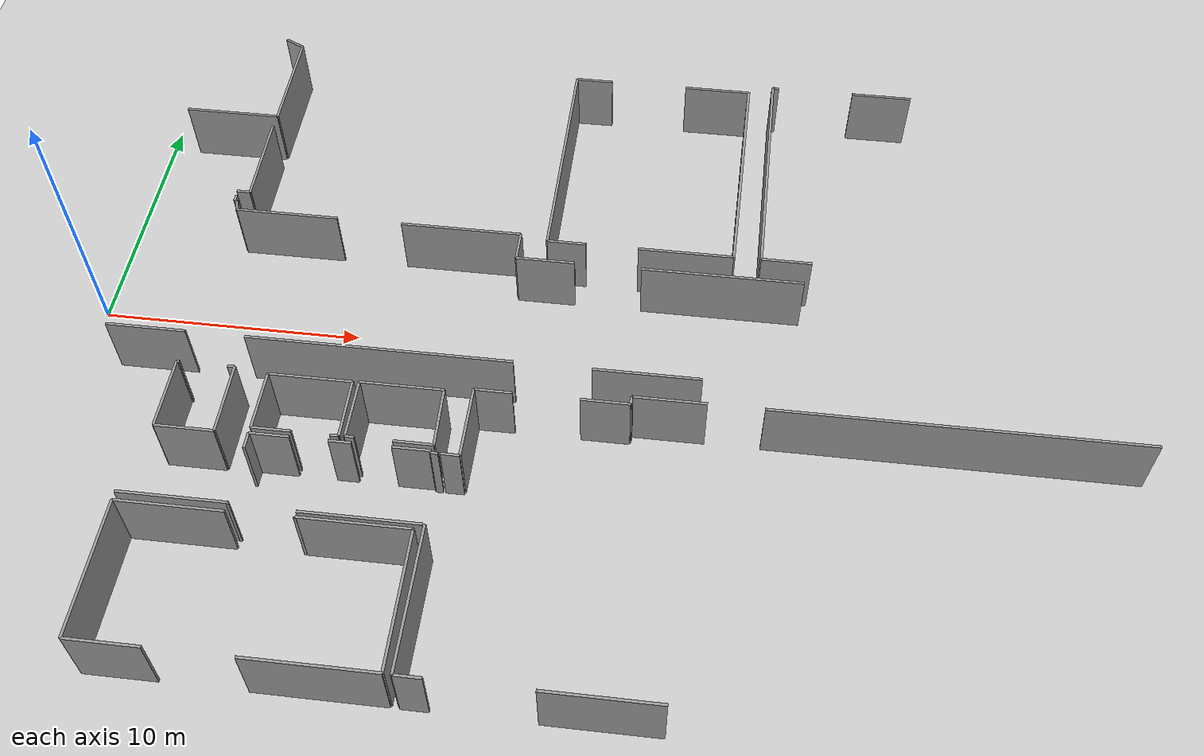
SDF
<sdf version="1.6">
 <world name="default">
  <model name="ground_plane">
   <static>1</static>
   <link name="link">
    <collision name="collision">
     <geometry><plane><normal>0 0 1</normal><size>100 100</size></plane></geometry>
     <surface><friction><ode><mu>100</mu><mu2>50</mu2></ode></friction></surface>
    </collision>
    <visual name="visual">
     <cast_shadows>0</cast_shadows>
     <geometry><plane><normal>0 0 1</normal><size>100 100</size></plane></geometry>
     <material>
      <script><uri>file://media/materials/scripts/gazebo.material</uri><name>Gazebo/Grey</name></script>
     </material>
    </visual>
   </link>
  </model>
  <model name="50056456">
   <static>1</static>
   <link name="Wall_29">
    <collision name="Wall_29_Collision">
     <geometry><box><size>4.00091484333 0.1 2.5</size></box></geometry>
     <pose>2.00045742167 0 1.25 0 0 0</pose>
    </collision>
    <visual name="Wall_29_Visual">
     <pose>2.00045742167 0 1.25 0 0 0</pose>
     <geometry><box><size>4.00091484333 0.1 2.5</size></box></geometry>
     <material>
      <script><uri>file://media/materials/scripts/gazebo.material</uri><name>Gazebo/Grey</name></script>
      <ambient>1 1 1 1</ambient>
     </material>
    </visual>
    <pose>78.9202307438 -17.0020245144 0 0 0 3.14159265359</pose>
   </link>
   <link name="Wall_30">
    <collision name="Wall_30_Collision">
     <geometry><box><size>9.94739650835 0.1 2.5</size></box></geometry>
     <pose>4.97369825417 0 1.25 0 0 0</pose>
    </collision>
    <visual name="Wall_30_Visual">
     <pose>4.97369825417 0 1.25 0 0 0</pose>
     <geometry><box><size>9.94739650835 0.1 2.5</size></box></geometry>
     <material>
      <script><uri>file://media/materials/scripts/gazebo.material</uri><name>Gazebo/Grey</name></script>
      <ambient>1 1 1 1</ambient>
     </material>
    </visual>
    <pose>72.0470466655 -17.0020245144 0 0 0 3.14159265359</pose>
   </link>
   <link name="Wall_31">
    <collision name="Wall_31_Collision">
     <geometry><box><size>3.02372663126 0.1 2.5</size></box></geometry>
     <pose>1.51186331563 0 1.25 0 0 0</pose>
    </collision>
    <visual name="Wall_31_Visual">
     <pose>1.51186331563 0 1.25 0 0 0</pose>
     <geometry><box><size>3.02372663126 0.1 2.5</size></box></geometry>
     <material>
      <script><uri>file://media/materials/scripts/gazebo.material</uri><name>Gazebo/Grey</name></script>
      <ambient>1 1 1 1</ambient>
     </material>
    </visual>
    <pose>59.875903196 -17.0020245144 0 0 0 3.14159265359</pose>
   </link>
   <link name="Wall_61">
    <collision name="Wall_61_Collision">
     <geometry><box><size>0.252767824621 0.1 2.5</size></box></geometry>
     <pose>0.126383912311 0 1.25 0 0 0</pose>
    </collision>
    <visual name="Wall_61_Visual">
     <pose>0.126383912311 0 1.25 0 0 0</pose>
     <geometry><box><size>0.252767824621 0.1 2.5</size></box></geometry>
     <material>
      <script><uri>file://media/materials/scripts/gazebo.material</uri><name>Gazebo/Grey</name></script>
      <ambient>1 1 1 1</ambient>
     </material>
    </visual>
    <pose>59.925711333 -10.1540833355 0 0 0 -1.57079632679</pose>
   </link>
   <link name="Wall_62">
    <collision name="Wall_62_Collision">
     <geometry><box><size>0.110430015733 0.1 2.5</size></box></geometry>
     <pose>0.0552150078667 0 1.25 0 0 0</pose>
    </collision>
    <visual name="Wall_62_Visual">
     <pose>0.0552150078667 0 1.25 0 0 0</pose>
     <geometry><box><size>0.110430015733 0.1 2.5</size></box></geometry>
     <material>
      <script><uri>file://media/materials/scripts/gazebo.material</uri><name>Gazebo/Grey</name></script>
      <ambient>1 1 1 1</ambient>
     </material>
    </visual>
    <pose>59.925711333 -10.4068511601 0 0 0 -0.265444729628</pose>
   </link>
   <link name="Wall_63">
    <collision name="Wall_63_Collision">
     <geometry><box><size>0.448701913072 0.1 2.5</size></box></geometry>
     <pose>0.224350956536 0 1.25 0 0 0</pose>
    </collision>
    <visual name="Wall_63_Visual">
     <pose>0.224350956536 0 1.25 0 0 0</pose>
     <geometry><box><size>0.448701913072 0.1 2.5</size></box></geometry>
     <material>
      <script><uri>file://media/materials/scripts/gazebo.material</uri><name>Gazebo/Grey</name></script>
      <ambient>1 1 1 1</ambient>
     </material>
    </visual>
    <pose>60.0322736398 -10.435821199 0 0 0 -1.33140368615</pose>
   </link>
   <link name="Wall_64">
    <collision name="Wall_64_Collision">
     <geometry><box><size>4.01548457049 0.1 2.5</size></box></geometry>
     <pose>2.00774228524 0 1.25 0 0 0</pose>
    </collision>
    <visual name="Wall_64_Visual">
     <pose>2.00774228524 0 1.25 0 0 0</pose>
     <geometry><box><size>4.01548457049 0.1 2.5</size></box></geometry>
     <material>
      <script><uri>file://media/materials/scripts/gazebo.material</uri><name>Gazebo/Grey</name></script>
      <ambient>1 1 1 1</ambient>
     </material>
    </visual>
    <pose>60.1386665311 -10.8717271056 0 0 0 0.0</pose>
   </link>
   <link name="Wall_65">
    <collision name="Wall_65_Collision">
     <geometry><box><size>4.70076999314 0.1 2.5</size></box></geometry>
     <pose>2.35038499657 0 1.25 0 0 0</pose>
    </collision>
    <visual name="Wall_65_Visual">
     <pose>2.35038499657 0 1.25 0 0 0</pose>
     <geometry><box><size>4.70076999314 0.1 2.5</size></box></geometry>
     <material>
      <script><uri>file://media/materials/scripts/gazebo.material</uri><name>Gazebo/Grey</name></script>
      <ambient>1 1 1 1</ambient>
     </material>
    </visual>
    <pose>66.7052086775 -10.8717271056 0 0 0 0.0</pose>
   </link>
   <link name="Wall_66">
    <collision name="Wall_66_Collision">
     <geometry><box><size>1.21132033917 0.1 2.5</size></box></geometry>
     <pose>0.605660169585 0 1.25 0 0 0</pose>
    </collision>
    <visual name="Wall_66_Visual">
     <pose>0.605660169585 0 1.25 0 0 0</pose>
     <geometry><box><size>1.21132033917 0.1 2.5</size></box></geometry>
     <material>
      <script><uri>file://media/materials/scripts/gazebo.material</uri><name>Gazebo/Grey</name></script>
      <ambient>1 1 1 1</ambient>
     </material>
    </visual>
    <pose>71.4059786706 -10.8717271056 0 0 0 -1.57079632679</pose>
   </link>
   <link name="Wall_67">
    <collision name="Wall_67_Collision">
     <geometry><box><size>2.25017576851 0.1 2.5</size></box></geometry>
     <pose>1.12508788426 0 1.25 0 0 0</pose>
    </collision>
    <visual name="Wall_67_Visual">
     <pose>1.12508788426 0 1.25 0 0 0</pose>
     <geometry><box><size>2.25017576851 0.1 2.5</size></box></geometry>
     <material>
      <script><uri>file://media/materials/scripts/gazebo.material</uri><name>Gazebo/Grey</name></script>
      <ambient>1 1 1 1</ambient>
     </material>
    </visual>
    <pose>71.4059786706 -12.0830474448 0 0 0 0.0</pose>
   </link>
   <link name="Wall_68">
    <collision name="Wall_68_Collision">
     <geometry><box><size>6.17451483656 0.1 2.5</size></box></geometry>
     <pose>3.08725741828 0 1.25 0 0 0</pose>
    </collision>
    <visual name="Wall_68_Visual">
     <pose>3.08725741828 0 1.25 0 0 0</pose>
     <geometry><box><size>6.17451483656 0.1 2.5</size></box></geometry>
     <material>
      <script><uri>file://media/materials/scripts/gazebo.material</uri><name>Gazebo/Grey</name></script>
      <ambient>1 1 1 1</ambient>
     </material>
    </visual>
    <pose>76.2209346649 -12.0830474448 0 0 0 0.0</pose>
   </link>
   <link name="Wall_148">
    <collision name="Wall_148_Collision">
     <geometry><box><size>0.85509022002 0.1 2.5</size></box></geometry>
     <pose>0.42754511001 0 1.25 0 0 0</pose>
    </collision>
    <visual name="Wall_148_Visual">
     <pose>0.42754511001 0 1.25 0 0 0</pose>
     <geometry><box><size>0.85509022002 0.1 2.5</size></box></geometry>
     <material>
      <script><uri>file://media/materials/scripts/gazebo.material</uri><name>Gazebo/Grey</name></script>
      <ambient>1 1 1 1</ambient>
     </material>
    </visual>
    <pose>59.6485476862 -0.87198122877 0 0 0 -0.45939457776</pose>
   </link>
   <link name="Wall_149">
    <collision name="Wall_149_Collision">
     <geometry><box><size>4.3221265025 0.1 2.5</size></box></geometry>
     <pose>2.16106325125 0 1.25 0 0 0</pose>
    </collision>
    <visual name="Wall_149_Visual">
     <pose>2.16106325125 0 1.25 0 0 0</pose>
     <geometry><box><size>4.3221265025 0.1 2.5</size></box></geometry>
     <material>
      <script><uri>file://media/materials/scripts/gazebo.material</uri><name>Gazebo/Grey</name></script>
      <ambient>1 1 1 1</ambient>
     </material>
    </visual>
    <pose>60.4149831008 -1.2511329657 0 0 0 -1.57079632679</pose>
   </link>
   <link name="Wall_150">
    <collision name="Wall_150_Collision">
     <geometry><box><size>3.79236444648 0.1 2.5</size></box></geometry>
     <pose>1.89618222324 0 1.25 0 0 0</pose>
    </collision>
    <visual name="Wall_150_Visual">
     <pose>1.89618222324 0 1.25 0 0 0</pose>
     <geometry><box><size>3.79236444648 0.1 2.5</size></box></geometry>
     <material>
      <script><uri>file://media/materials/scripts/gazebo.material</uri><name>Gazebo/Grey</name></script>
      <ambient>1 1 1 1</ambient>
     </material>
    </visual>
    <pose>60.4149831008 -5.5732594682 0 0 0 3.14159265359</pose>
   </link>
   <link name="Wall_152">
    <collision name="Wall_152_Collision">
     <geometry><box><size>0.522985438744 0.1 2.5</size></box></geometry>
     <pose>0.261492719372 0 1.25 0 0 0</pose>
    </collision>
    <visual name="Wall_152_Visual">
     <pose>0.261492719372 0 1.25 0 0 0</pose>
     <geometry><box><size>0.522985438744 0.1 2.5</size></box></geometry>
     <material>
      <script><uri>file://media/materials/scripts/gazebo.material</uri><name>Gazebo/Grey</name></script>
      <ambient>1 1 1 1</ambient>
     </material>
    </visual>
    <pose>60.4099006378 -9.90317908058 0 0 0 3.14159265359</pose>
   </link>
   <link name="Wall_156">
    <collision name="Wall_156_Collision">
     <geometry><box><size>3.74653058064 0.1 2.5</size></box></geometry>
     <pose>1.87326529032 0 1.25 0 0 0</pose>
    </collision>
    <visual name="Wall_156_Visual">
     <pose>1.87326529032 0 1.25 0 0 0</pose>
     <geometry><box><size>3.74653058064 0.1 2.5</size></box></geometry>
     <material>
      <script><uri>file://media/materials/scripts/gazebo.material</uri><name>Gazebo/Grey</name></script>
      <ambient>1 1 1 1</ambient>
     </material>
    </visual>
    <pose>60.3668691181 -6.15689563162 0 0 0 -1.55931037599</pose>
   </link>
   <link name="Wall_157">
    <collision name="Wall_157_Collision">
     <geometry><box><size>2.17952953335 0.1 2.5</size></box></geometry>
     <pose>1.08976476667 0 1.25 0 0 0</pose>
    </collision>
    <visual name="Wall_157_Visual">
     <pose>1.08976476667 0 1.25 0 0 0</pose>
     <geometry><box><size>2.17952953335 0.1 2.5</size></box></geometry>
     <material>
      <script><uri>file://media/materials/scripts/gazebo.material</uri><name>Gazebo/Grey</name></script>
      <ambient>1 1 1 1</ambient>
     </material>
    </visual>
    <pose>62.1438675849 -21.1877715941 0 0 0 3.14159265359</pose>
   </link>
   <link name="Wall_158">
    <collision name="Wall_158_Collision">
     <geometry><box><size>2.80365598502 0.1 2.5</size></box></geometry>
     <pose>1.40182799251 0 1.25 0 0 0</pose>
    </collision>
    <visual name="Wall_158_Visual">
     <pose>1.40182799251 0 1.25 0 0 0</pose>
     <geometry><box><size>2.80365598502 0.1 2.5</size></box></geometry>
     <material>
      <script><uri>file://media/materials/scripts/gazebo.material</uri><name>Gazebo/Grey</name></script>
      <ambient>1 1 1 1</ambient>
     </material>
    </visual>
    <pose>59.9643380516 -21.1877715941 0 0 0 1.57079632679</pose>
   </link>
   <link name="Wall_159">
    <collision name="Wall_159_Collision">
     <geometry><box><size>0.0987691968862 0.1 2.5</size></box></geometry>
     <pose>0.0493845984431 0 1.25 0 0 0</pose>
    </collision>
    <visual name="Wall_159_Visual">
     <pose>0.0493845984431 0 1.25 0 0 0</pose>
     <geometry><box><size>0.0987691968862 0.1 2.5</size></box></geometry>
     <material>
      <script><uri>file://media/materials/scripts/gazebo.material</uri><name>Gazebo/Grey</name></script>
      <ambient>1 1 1 1</ambient>
     </material>
    </visual>
    <pose>59.9643380516 -18.3841156091 0 0 0 0.0</pose>
   </link>
   <link name="Wall_160">
    <collision name="Wall_160_Collision">
     <geometry><box><size>0.267337551778 0.1 2.5</size></box></geometry>
     <pose>0.133668775889 0 1.25 0 0 0</pose>
    </collision>
    <visual name="Wall_160_Visual">
     <pose>0.133668775889 0 1.25 0 0 0</pose>
     <geometry><box><size>0.267337551778 0.1 2.5</size></box></geometry>
     <material>
      <script><uri>file://media/materials/scripts/gazebo.material</uri><name>Gazebo/Grey</name></script>
      <ambient>1 1 1 1</ambient>
     </material>
    </visual>
    <pose>61.8484070714 -18.3841156091 0 0 0 0.0</pose>
   </link>
   <link name="Wall_161">
    <collision name="Wall_161_Collision">
     <geometry><box><size>2.80379702963 0.1 2.5</size></box></geometry>
     <pose>1.40189851481 0 1.25 0 0 0</pose>
    </collision>
    <visual name="Wall_161_Visual">
     <pose>1.40189851481 0 1.25 0 0 0</pose>
     <geometry><box><size>2.80379702963 0.1 2.5</size></box></geometry>
     <material>
      <script><uri>file://media/materials/scripts/gazebo.material</uri><name>Gazebo/Grey</name></script>
      <ambient>1 1 1 1</ambient>
     </material>
    </visual>
    <pose>62.1157446232 -18.3841156091 0 0 0 -1.56076584563</pose>
   </link>
   <link name="Wall_162">
    <collision name="Wall_162_Collision">
     <geometry><box><size>3.67157124342 0.1 2.5</size></box></geometry>
     <pose>1.83578562171 0 1.25 0 0 0</pose>
    </collision>
    <visual name="Wall_162_Visual">
     <pose>1.83578562171 0 1.25 0 0 0</pose>
     <geometry><box><size>3.67157124342 0.1 2.5</size></box></geometry>
     <material>
      <script><uri>file://media/materials/scripts/gazebo.material</uri><name>Gazebo/Grey</name></script>
      <ambient>1 1 1 1</ambient>
     </material>
    </visual>
    <pose>79.6668445529 -11.0867152889 0 0 0 3.14159265359</pose>
   </link>
   <link name="Wall_163">
    <collision name="Wall_163_Collision">
     <geometry><box><size>1.49881832736 0.1 2.5</size></box></geometry>
     <pose>0.749409163681 0 1.25 0 0 0</pose>
    </collision>
    <visual name="Wall_163_Visual">
     <pose>0.749409163681 0 1.25 0 0 0</pose>
     <geometry><box><size>1.49881832736 0.1 2.5</size></box></geometry>
     <material>
      <script><uri>file://media/materials/scripts/gazebo.material</uri><name>Gazebo/Grey</name></script>
      <ambient>1 1 1 1</ambient>
     </material>
    </visual>
    <pose>73.9663540952 -11.0867152889 0 0 0 3.14159265359</pose>
   </link>
   <link name="Wall_164">
    <collision name="Wall_164_Collision">
     <geometry><box><size>9.18451881782 0.1 2.5</size></box></geometry>
     <pose>4.59225940891 0 1.25 0 0 0</pose>
    </collision>
    <visual name="Wall_164_Visual">
     <pose>4.59225940891 0 1.25 0 0 0</pose>
     <geometry><box><size>9.18451881782 0.1 2.5</size></box></geometry>
     <material>
      <script><uri>file://media/materials/scripts/gazebo.material</uri><name>Gazebo/Grey</name></script>
      <ambient>1 1 1 1</ambient>
     </material>
    </visual>
    <pose>72.4675357678 -11.0867152889 0 0 0 1.57079632679</pose>
   </link>
   <link name="Wall_165">
    <collision name="Wall_165_Collision">
     <geometry><box><size>1.4937358644 0.1 2.5</size></box></geometry>
     <pose>0.7468679322 0 1.25 0 0 0</pose>
    </collision>
    <visual name="Wall_165_Visual">
     <pose>0.7468679322 0 1.25 0 0 0</pose>
     <geometry><box><size>1.4937358644 0.1 2.5</size></box></geometry>
     <material>
      <script><uri>file://media/materials/scripts/gazebo.material</uri><name>Gazebo/Grey</name></script>
      <ambient>1 1 1 1</ambient>
     </material>
    </visual>
    <pose>72.4675357678 -1.90219647108 0 0 0 0.0</pose>
   </link>
   <link name="Wall_166">
    <collision name="Wall_166_Collision">
     <geometry><box><size>2.65406215852 0.1 2.5</size></box></geometry>
     <pose>1.32703107926 0 1.25 0 0 0</pose>
    </collision>
    <visual name="Wall_166_Visual">
     <pose>1.32703107926 0 1.25 0 0 0</pose>
     <geometry><box><size>2.65406215852 0.1 2.5</size></box></geometry>
     <material>
      <script><uri>file://media/materials/scripts/gazebo.material</uri><name>Gazebo/Grey</name></script>
      <ambient>1 1 1 1</ambient>
     </material>
    </visual>
    <pose>77.0705530567 -1.90219647108 0 0 0 0.0</pose>
   </link>
   <link name="Wall_167">
    <collision name="Wall_167_Collision">
     <geometry><box><size>9.18470050488 0.1 2.5</size></box></geometry>
     <pose>4.59235025244 0 1.25 0 0 0</pose>
    </collision>
    <visual name="Wall_167_Visual">
     <pose>4.59235025244 0 1.25 0 0 0</pose>
     <geometry><box><size>9.18470050488 0.1 2.5</size></box></geometry>
     <material>
      <script><uri>file://media/materials/scripts/gazebo.material</uri><name>Gazebo/Grey</name></script>
      <ambient>1 1 1 1</ambient>
     </material>
    </visual>
    <pose>79.7246152152 -1.90219647108 0 0 0 -1.57708624809</pose>
   </link>
   <link name="Wall_169">
    <collision name="Wall_169_Collision">
     <geometry><box><size>1.93421598773 0.1 2.5</size></box></geometry>
     <pose>0.967107993867 0 1.25 0 0 0</pose>
    </collision>
    <visual name="Wall_169_Visual">
     <pose>0.967107993867 0 1.25 0 0 0</pose>
     <geometry><box><size>1.93421598773 0.1 2.5</size></box></geometry>
     <material>
      <script><uri>file://media/materials/scripts/gazebo.material</uri><name>Gazebo/Grey</name></script>
      <ambient>1 1 1 1</ambient>
     </material>
    </visual>
    <pose>82.6516056348 -11.0680795914 0 0 0 3.14159265359</pose>
   </link>
   <link name="Wall_170">
    <collision name="Wall_170_Collision">
     <geometry><box><size>9.57281898808 0.1 2.5</size></box></geometry>
     <pose>4.78640949404 0 1.25 0 0 0</pose>
    </collision>
    <visual name="Wall_170_Visual">
     <pose>4.78640949404 0 1.25 0 0 0</pose>
     <geometry><box><size>9.57281898808 0.1 2.5</size></box></geometry>
     <material>
      <script><uri>file://media/materials/scripts/gazebo.material</uri><name>Gazebo/Grey</name></script>
      <ambient>1 1 1 1</ambient>
     </material>
    </visual>
    <pose>80.717389647 -11.0680795914 0 0 0 1.57079632679</pose>
   </link>
   <link name="Wall_171">
    <collision name="Wall_171_Collision">
     <geometry><box><size>0.258019703015 0.1 2.5</size></box></geometry>
     <pose>0.129009851507 0 1.25 0 0 0</pose>
    </collision>
    <visual name="Wall_171_Visual">
     <pose>0.129009851507 0 1.25 0 0 0</pose>
     <geometry><box><size>0.258019703015 0.1 2.5</size></box></geometry>
     <material>
      <script><uri>file://media/materials/scripts/gazebo.material</uri><name>Gazebo/Grey</name></script>
      <ambient>1 1 1 1</ambient>
     </material>
    </visual>
    <pose>80.717389647 -1.49526060329 0 0 0 0.0</pose>
   </link>
   <link name="Wall_172">
    <collision name="Wall_172_Collision">
     <geometry><box><size>2.41738879995 0.1 2.5</size></box></geometry>
     <pose>1.20869439997 0 1.25 0 0 0</pose>
    </collision>
    <visual name="Wall_172_Visual">
     <pose>1.20869439997 0 1.25 0 0 0</pose>
     <geometry><box><size>2.41738879995 0.1 2.5</size></box></geometry>
     <material>
      <script><uri>file://media/materials/scripts/gazebo.material</uri><name>Gazebo/Grey</name></script>
      <ambient>1 1 1 1</ambient>
     </material>
    </visual>
    <pose>84.0497911955 -1.49526060329 0 0 0 0.0</pose>
   </link>
   <link name="Wall_214">
    <collision name="Wall_214_Collision">
     <geometry><box><size>4.08765554454 0.1 2.5</size></box></geometry>
     <pose>2.04382777227 0 1.25 0 0 0</pose>
    </collision>
    <visual name="Wall_214_Visual">
     <pose>2.04382777227 0 1.25 0 0 0</pose>
     <geometry><box><size>4.08765554454 0.1 2.5</size></box></geometry>
     <material>
      <script><uri>file://media/materials/scripts/gazebo.material</uri><name>Gazebo/Grey</name></script>
      <ambient>1 1 1 1</ambient>
     </material>
    </visual>
    <pose>78.785037229 -29.4665955122 0 0 0 3.14159265359</pose>
   </link>
   <link name="Wall_215">
    <collision name="Wall_215_Collision">
     <geometry><box><size>0.971766918249 0.1 2.5</size></box></geometry>
     <pose>0.485883459124 0 1.25 0 0 0</pose>
    </collision>
    <visual name="Wall_215_Visual">
     <pose>0.485883459124 0 1.25 0 0 0</pose>
     <geometry><box><size>0.971766918249 0.1 2.5</size></box></geometry>
     <material>
      <script><uri>file://media/materials/scripts/gazebo.material</uri><name>Gazebo/Grey</name></script>
      <ambient>1 1 1 1</ambient>
     </material>
    </visual>
    <pose>71.1327115787 -29.4665955122 0 0 0 3.14159265359</pose>
   </link>
   <link name="Wall_216">
    <collision name="Wall_216_Collision">
     <geometry><box><size>5.42129382565 0.1 2.5</size></box></geometry>
     <pose>2.71064691283 0 1.25 0 0 0</pose>
    </collision>
    <visual name="Wall_216_Visual">
     <pose>2.71064691283 0 1.25 0 0 0</pose>
     <geometry><box><size>5.42129382565 0.1 2.5</size></box></geometry>
     <material>
      <script><uri>file://media/materials/scripts/gazebo.material</uri><name>Gazebo/Grey</name></script>
      <ambient>1 1 1 1</ambient>
     </material>
    </visual>
    <pose>70.1609446604 -29.4665955122 0 0 0 1.57079632679</pose>
   </link>
   <link name="Wall_217">
    <collision name="Wall_217_Collision">
     <geometry><box><size>0.679694713391 0.1 2.5</size></box></geometry>
     <pose>0.339847356696 0 1.25 0 0 0</pose>
    </collision>
    <visual name="Wall_217_Visual">
     <pose>0.339847356696 0 1.25 0 0 0</pose>
     <geometry><box><size>0.679694713391 0.1 2.5</size></box></geometry>
     <material>
      <script><uri>file://media/materials/scripts/gazebo.material</uri><name>Gazebo/Grey</name></script>
      <ambient>1 1 1 1</ambient>
     </material>
    </visual>
    <pose>70.1609446604 -21.2094567694 0 0 0 0.0</pose>
   </link>
   <link name="Wall_218">
    <collision name="Wall_218_Collision">
     <geometry><box><size>2.83448959366 0.1 2.5</size></box></geometry>
     <pose>1.41724479683 0 1.25 0 0 0</pose>
    </collision>
    <visual name="Wall_218_Visual">
     <pose>1.41724479683 0 1.25 0 0 0</pose>
     <geometry><box><size>2.83448959366 0.1 2.5</size></box></geometry>
     <material>
      <script><uri>file://media/materials/scripts/gazebo.material</uri><name>Gazebo/Grey</name></script>
      <ambient>1 1 1 1</ambient>
     </material>
    </visual>
    <pose>70.8406393738 -21.2094567694 0 0 0 1.57079632679</pose>
   </link>
   <link name="Wall_219">
    <collision name="Wall_219_Collision">
     <geometry><box><size>1.3917477743 0.1 2.5</size></box></geometry>
     <pose>0.695873887152 0 1.25 0 0 0</pose>
    </collision>
    <visual name="Wall_219_Visual">
     <pose>0.695873887152 0 1.25 0 0 0</pose>
     <geometry><box><size>1.3917477743 0.1 2.5</size></box></geometry>
     <material>
      <script><uri>file://media/materials/scripts/gazebo.material</uri><name>Gazebo/Grey</name></script>
      <ambient>1 1 1 1</ambient>
     </material>
    </visual>
    <pose>70.8406393738 -18.3749671758 0 0 0 0.0</pose>
   </link>
   <link name="Wall_220">
    <collision name="Wall_220_Collision">
     <geometry><box><size>1.81003447604 0.1 2.5</size></box></geometry>
     <pose>0.90501723802 0 1.25 0 0 0</pose>
    </collision>
    <visual name="Wall_220_Visual">
     <pose>0.90501723802 0 1.25 0 0 0</pose>
     <geometry><box><size>1.81003447604 0.1 2.5</size></box></geometry>
     <material>
      <script><uri>file://media/materials/scripts/gazebo.material</uri><name>Gazebo/Grey</name></script>
      <ambient>1 1 1 1</ambient>
     </material>
    </visual>
    <pose>74.6582467197 -18.3749671758 0 0 0 0.0</pose>
   </link>
   <link name="Wall_221">
    <collision name="Wall_221_Collision">
     <geometry><box><size>0.329174184476 0.1 2.5</size></box></geometry>
     <pose>0.164587092238 0 1.25 0 0 0</pose>
    </collision>
    <visual name="Wall_221_Visual">
     <pose>0.164587092238 0 1.25 0 0 0</pose>
     <geometry><box><size>0.329174184476 0.1 2.5</size></box></geometry>
     <material>
      <script><uri>file://media/materials/scripts/gazebo.material</uri><name>Gazebo/Grey</name></script>
      <ambient>1 1 1 1</ambient>
     </material>
    </visual>
    <pose>76.4682811957 -18.3749671758 0 0 0 1.57079632679</pose>
   </link>
   <link name="Wall_222">
    <collision name="Wall_222_Collision">
     <geometry><box><size>2.70420912641 0.1 2.5</size></box></geometry>
     <pose>1.3521045632 0 1.25 0 0 0</pose>
    </collision>
    <visual name="Wall_222_Visual">
     <pose>1.3521045632 0 1.25 0 0 0</pose>
     <geometry><box><size>2.70420912641 0.1 2.5</size></box></geometry>
     <material>
      <script><uri>file://media/materials/scripts/gazebo.material</uri><name>Gazebo/Grey</name></script>
      <ambient>1 1 1 1</ambient>
     </material>
    </visual>
    <pose>76.4682811957 -18.0457929913 0 0 0 0.0</pose>
   </link>
   <link name="Wall_223">
    <collision name="Wall_223_Collision">
     <geometry><box><size>13.7087579308 0.1 2.5</size></box></geometry>
     <pose>6.85437896538 0 1.25 0 0 0</pose>
    </collision>
    <visual name="Wall_223_Visual">
     <pose>6.85437896538 0 1.25 0 0 0</pose>
     <geometry><box><size>13.7087579308 0.1 2.5</size></box></geometry>
     <material>
      <script><uri>file://media/materials/scripts/gazebo.material</uri><name>Gazebo/Grey</name></script>
      <ambient>1 1 1 1</ambient>
     </material>
    </visual>
    <pose>81.2169957561 -18.0457929913 0 0 0 0.0</pose>
   </link>
   <link name="Wall_231">
    <collision name="Wall_231_Collision">
     <geometry><box><size>4.30128840436 0.1 2.5</size></box></geometry>
     <pose>2.15064420218 0 1.25 0 0 0</pose>
    </collision>
    <visual name="Wall_231_Visual">
     <pose>2.15064420218 0 1.25 0 0 0</pose>
     <geometry><box><size>4.30128840436 0.1 2.5</size></box></geometry>
     <material>
      <script><uri>file://media/materials/scripts/gazebo.material</uri><name>Gazebo/Grey</name></script>
      <ambient>1 1 1 1</ambient>
     </material>
    </visual>
    <pose>70.0826747308 -24.0458099328 0 0 0 3.14159265359</pose>
   </link>
   <link name="Wall_232">
    <collision name="Wall_232_Collision">
     <geometry><box><size>0.0696297425733 0.1 2.5</size></box></geometry>
     <pose>0.0348148712866 0 1.25 0 0 0</pose>
    </collision>
    <visual name="Wall_232_Visual">
     <pose>0.0348148712866 0 1.25 0 0 0</pose>
     <geometry><box><size>0.0696297425733 0.1 2.5</size></box></geometry>
     <material>
      <script><uri>file://media/materials/scripts/gazebo.material</uri><name>Gazebo/Grey</name></script>
      <ambient>1 1 1 1</ambient>
     </material>
    </visual>
    <pose>63.4136362481 -24.0458099328 0 0 0 1.57079632679</pose>
   </link>
   <link name="Wall_233">
    <collision name="Wall_233_Collision">
     <geometry><box><size>3.94382184273 0.1 2.5</size></box></geometry>
     <pose>1.97191092137 0 1.25 0 0 0</pose>
    </collision>
    <visual name="Wall_233_Visual">
     <pose>1.97191092137 0 1.25 0 0 0</pose>
     <geometry><box><size>3.94382184273 0.1 2.5</size></box></geometry>
     <material>
      <script><uri>file://media/materials/scripts/gazebo.material</uri><name>Gazebo/Grey</name></script>
      <ambient>1 1 1 1</ambient>
     </material>
    </visual>
    <pose>63.4136362481 -23.9761801903 0 0 0 3.14159265359</pose>
   </link>
   <link name="Wall_236">
    <collision name="Wall_236_Collision">
     <geometry><box><size>0.638187932539 0.1 2.5</size></box></geometry>
     <pose>0.319093966269 0 1.25 0 0 0</pose>
    </collision>
    <visual name="Wall_236_Visual">
     <pose>0.319093966269 0 1.25 0 0 0</pose>
     <geometry><box><size>0.638187932539 0.1 2.5</size></box></geometry>
     <material>
      <script><uri>file://media/materials/scripts/gazebo.material</uri><name>Gazebo/Grey</name></script>
      <ambient>1 1 1 1</ambient>
     </material>
    </visual>
    <pose>63.3643363574 -21.7678500335 0 0 0 1.57079632679</pose>
   </link>
   <link name="Wall_237">
    <collision name="Wall_237_Collision">
     <geometry><box><size>1.44325006565 0.1 2.5</size></box></geometry>
     <pose>0.721625032824 0 1.25 0 0 0</pose>
    </collision>
    <visual name="Wall_237_Visual">
     <pose>0.721625032824 0 1.25 0 0 0</pose>
     <geometry><box><size>1.44325006565 0.1 2.5</size></box></geometry>
     <material>
      <script><uri>file://media/materials/scripts/gazebo.material</uri><name>Gazebo/Grey</name></script>
      <ambient>1 1 1 1</ambient>
     </material>
    </visual>
    <pose>63.3643363574 -21.1296621009 0 0 0 0.0</pose>
   </link>
   <link name="Wall_238">
    <collision name="Wall_238_Collision">
     <geometry><box><size>0.813194073848 0.1 2.5</size></box></geometry>
     <pose>0.406597036924 0 1.25 0 0 0</pose>
    </collision>
    <visual name="Wall_238_Visual">
     <pose>0.406597036924 0 1.25 0 0 0</pose>
     <geometry><box><size>0.813194073848 0.1 2.5</size></box></geometry>
     <material>
      <script><uri>file://media/materials/scripts/gazebo.material</uri><name>Gazebo/Grey</name></script>
      <ambient>1 1 1 1</ambient>
     </material>
    </visual>
    <pose>66.1927269955 -21.1296621009 0 0 0 0.0</pose>
   </link>
   <link name="Wall_239">
    <collision name="Wall_239_Collision">
     <geometry><box><size>1.38988420455 0.1 2.5</size></box></geometry>
     <pose>0.694942102276 0 1.25 0 0 0</pose>
    </collision>
    <visual name="Wall_239_Visual">
     <pose>0.694942102276 0 1.25 0 0 0</pose>
     <geometry><box><size>1.38988420455 0.1 2.5</size></box></geometry>
     <material>
      <script><uri>file://media/materials/scripts/gazebo.material</uri><name>Gazebo/Grey</name></script>
      <ambient>1 1 1 1</ambient>
     </material>
    </visual>
    <pose>68.4335849152 -21.1296621009 0 0 0 0.0</pose>
   </link>
   <link name="Wall_240">
    <collision name="Wall_240_Collision">
     <geometry><box><size>0.0869101166425 0.1 2.5</size></box></geometry>
     <pose>0.0434550583213 0 1.25 0 0 0</pose>
    </collision>
    <visual name="Wall_240_Visual">
     <pose>0.0434550583213 0 1.25 0 0 0</pose>
     <geometry><box><size>0.0869101166425 0.1 2.5</size></box></geometry>
     <material>
      <script><uri>file://media/materials/scripts/gazebo.material</uri><name>Gazebo/Grey</name></script>
      <ambient>1 1 1 1</ambient>
     </material>
    </visual>
    <pose>69.8234691198 -21.1296621009 0 0 0 -1.57079632679</pose>
   </link>
   <link name="Wall_241">
    <collision name="Wall_241_Collision">
     <geometry><box><size>0.261069180792 0.1 2.5</size></box></geometry>
     <pose>0.130534590396 0 1.25 0 0 0</pose>
    </collision>
    <visual name="Wall_241_Visual">
     <pose>0.130534590396 0 1.25 0 0 0</pose>
     <geometry><box><size>0.261069180792 0.1 2.5</size></box></geometry>
     <material>
      <script><uri>file://media/materials/scripts/gazebo.material</uri><name>Gazebo/Grey</name></script>
      <ambient>1 1 1 1</ambient>
     </material>
    </visual>
    <pose>69.8234691198 -21.2165722176 0 0 0 0.0</pose>
   </link>
   <link name="Wall_248">
    <collision name="Wall_248_Collision">
     <geometry><box><size>4.69162155981 0.1 2.5</size></box></geometry>
     <pose>2.3458107799 0 1.25 0 0 0</pose>
    </collision>
    <visual name="Wall_248_Visual">
     <pose>2.3458107799 0 1.25 0 0 0</pose>
     <geometry><box><size>4.69162155981 0.1 2.5</size></box></geometry>
     <material>
      <script><uri>file://media/materials/scripts/gazebo.material</uri><name>Gazebo/Grey</name></script>
      <ambient>1 1 1 1</ambient>
     </material>
    </visual>
    <pose>69.8571827908 -29.4510092924 0 0 0 3.14159265359</pose>
   </link>
   <link name="Wall_249">
    <collision name="Wall_249_Collision">
     <geometry><box><size>2.62797218199 0.1 2.5</size></box></geometry>
     <pose>1.31398609099 0 1.25 0 0 0</pose>
    </collision>
    <visual name="Wall_249_Visual">
     <pose>1.31398609099 0 1.25 0 0 0</pose>
     <geometry><box><size>2.62797218199 0.1 2.5</size></box></geometry>
     <material>
      <script><uri>file://media/materials/scripts/gazebo.material</uri><name>Gazebo/Grey</name></script>
      <ambient>1 1 1 1</ambient>
     </material>
    </visual>
    <pose>62.1248930565 -29.4510092924 0 0 0 3.14159265359</pose>
   </link>
   <link name="Wall_250">
    <collision name="Wall_250_Collision">
     <geometry><box><size>5.13701473067 0.1 2.5</size></box></geometry>
     <pose>2.56850736534 0 1.25 0 0 0</pose>
    </collision>
    <visual name="Wall_250_Visual">
     <pose>2.56850736534 0 1.25 0 0 0</pose>
     <geometry><box><size>5.13701473067 0.1 2.5</size></box></geometry>
     <material>
      <script><uri>file://media/materials/scripts/gazebo.material</uri><name>Gazebo/Grey</name></script>
      <ambient>1 1 1 1</ambient>
     </material>
    </visual>
    <pose>59.4969208745 -29.4510092924 0 0 0 1.57079632679</pose>
   </link>
   <link name="Wall_251">
    <collision name="Wall_251_Collision">
     <geometry><box><size>3.88876182731 0.1 2.5</size></box></geometry>
     <pose>1.94438091366 0 1.25 0 0 0</pose>
    </collision>
    <visual name="Wall_251_Visual">
     <pose>1.94438091366 0 1.25 0 0 0</pose>
     <geometry><box><size>3.88876182731 0.1 2.5</size></box></geometry>
     <material>
      <script><uri>file://media/materials/scripts/gazebo.material</uri><name>Gazebo/Grey</name></script>
      <ambient>1 1 1 1</ambient>
     </material>
    </visual>
    <pose>59.4969208745 -24.3139945618 0 0 0 0.0</pose>
   </link>
   <link name="Wall_252">
    <collision name="Wall_252_Collision">
     <geometry><box><size>0.055737677145 0.1 2.5</size></box></geometry>
     <pose>0.0278688385725 0 1.25 0 0 0</pose>
    </collision>
    <visual name="Wall_252_Visual">
     <pose>0.0278688385725 0 1.25 0 0 0</pose>
     <geometry><box><size>0.055737677145 0.1 2.5</size></box></geometry>
     <material>
      <script><uri>file://media/materials/scripts/gazebo.material</uri><name>Gazebo/Grey</name></script>
      <ambient>1 1 1 1</ambient>
     </material>
    </visual>
    <pose>65.7917206678 -24.3139945618 0 0 0 1.57079632679</pose>
   </link>
   <link name="Wall_253">
    <collision name="Wall_253_Collision">
     <geometry><box><size>4.02124469518 0.1 2.5</size></box></geometry>
     <pose>2.01062234759 0 1.25 0 0 0</pose>
    </collision>
    <visual name="Wall_253_Visual">
     <pose>2.01062234759 0 1.25 0 0 0</pose>
     <geometry><box><size>4.02124469518 0.1 2.5</size></box></geometry>
     <material>
      <script><uri>file://media/materials/scripts/gazebo.material</uri><name>Gazebo/Grey</name></script>
      <ambient>1 1 1 1</ambient>
     </material>
    </visual>
    <pose>65.7917206678 -24.2582568846 0 0 0 0.0</pose>
   </link>
   <link name="Wall_254">
    <collision name="Wall_254_Collision">
     <geometry><box><size>5.19294066496 0.1 2.5</size></box></geometry>
     <pose>2.59647033248 0 1.25 0 0 0</pose>
    </collision>
    <visual name="Wall_254_Visual">
     <pose>2.59647033248 0 1.25 0 0 0</pose>
     <geometry><box><size>5.19294066496 0.1 2.5</size></box></geometry>
     <material>
      <script><uri>file://media/materials/scripts/gazebo.material</uri><name>Gazebo/Grey</name></script>
      <ambient>1 1 1 1</ambient>
     </material>
    </visual>
    <pose>69.812965363 -24.2582568846 0 0 0 -1.56228131286</pose>
   </link>
   <link name="Wall_255">
    <collision name="Wall_255_Collision">
     <geometry><box><size>0.311724394975 0.1 2.5</size></box></geometry>
     <pose>0.155862197488 0 1.25 0 0 0</pose>
    </collision>
    <visual name="Wall_255_Visual">
     <pose>0.155862197488 0 1.25 0 0 0</pose>
     <geometry><box><size>0.311724394975 0.1 2.5</size></box></geometry>
     <material>
      <script><uri>file://media/materials/scripts/gazebo.material</uri><name>Gazebo/Grey</name></script>
      <ambient>1 1 1 1</ambient>
     </material>
    </visual>
    <pose>66.5132609929 -20.8933275732 0 0 0 3.14159265359</pose>
   </link>
   <link name="Wall_256">
    <collision name="Wall_256_Collision">
     <geometry><box><size>1.4403700033 0.1 2.5</size></box></geometry>
     <pose>0.720185001652 0 1.25 0 0 0</pose>
    </collision>
    <visual name="Wall_256_Visual">
     <pose>0.720185001652 0 1.25 0 0 0</pose>
     <geometry><box><size>1.4403700033 0.1 2.5</size></box></geometry>
     <material>
      <script><uri>file://media/materials/scripts/gazebo.material</uri><name>Gazebo/Grey</name></script>
      <ambient>1 1 1 1</ambient>
     </material>
    </visual>
    <pose>64.8202925805 -20.8933275732 0 0 0 3.14159265359</pose>
   </link>
   <link name="Wall_257">
    <collision name="Wall_257_Collision">
     <geometry><box><size>2.34149068639 0.1 2.5</size></box></geometry>
     <pose>1.17074534319 0 1.25 0 0 0</pose>
    </collision>
    <visual name="Wall_257_Visual">
     <pose>1.17074534319 0 1.25 0 0 0</pose>
     <geometry><box><size>2.34149068639 0.1 2.5</size></box></geometry>
     <material>
      <script><uri>file://media/materials/scripts/gazebo.material</uri><name>Gazebo/Grey</name></script>
      <ambient>1 1 1 1</ambient>
     </material>
    </visual>
    <pose>63.3799225771 -20.8933275732 0 0 0 1.57079632679</pose>
   </link>
   <link name="Wall_258">
    <collision name="Wall_258_Collision">
     <geometry><box><size>3.09962474482 0.1 2.5</size></box></geometry>
     <pose>1.54981237241 0 1.25 0 0 0</pose>
    </collision>
    <visual name="Wall_258_Visual">
     <pose>1.54981237241 0 1.25 0 0 0</pose>
     <geometry><box><size>3.09962474482 0.1 2.5</size></box></geometry>
     <material>
      <script><uri>file://media/materials/scripts/gazebo.material</uri><name>Gazebo/Grey</name></script>
      <ambient>1 1 1 1</ambient>
     </material>
    </visual>
    <pose>63.3799225771 -18.5518368868 0 0 0 0.0</pose>
   </link>
   <link name="Wall_259">
    <collision name="Wall_259_Collision">
     <geometry><box><size>2.34173338492 0.1 2.5</size></box></geometry>
     <pose>1.17086669246 0 1.25 0 0 0</pose>
    </collision>
    <visual name="Wall_259_Visual">
     <pose>1.17086669246 0 1.25 0 0 0</pose>
     <geometry><box><size>2.34173338492 0.1 2.5</size></box></geometry>
     <material>
      <script><uri>file://media/materials/scripts/gazebo.material</uri><name>Gazebo/Grey</name></script>
      <ambient>1 1 1 1</ambient>
     </material>
    </visual>
    <pose>66.479547322 -18.5518368868 0 0 0 -1.55639894239</pose>
   </link>
   <link name="Wall_260">
    <collision name="Wall_260_Collision">
     <geometry><box><size>1.44867135947 0.1 2.5</size></box></geometry>
     <pose>0.724335679737 0 1.25 0 0 0</pose>
    </collision>
    <visual name="Wall_260_Visual">
     <pose>0.724335679737 0 1.25 0 0 0</pose>
     <geometry><box><size>1.44867135947 0.1 2.5</size></box></geometry>
     <material>
      <script><uri>file://media/materials/scripts/gazebo.material</uri><name>Gazebo/Grey</name></script>
      <ambient>1 1 1 1</ambient>
     </material>
    </visual>
    <pose>69.8739549186 -20.885026217 0 0 0 3.14159265359</pose>
   </link>
   <link name="Wall_261">
    <collision name="Wall_261_Collision">
     <geometry><box><size>0.329682430773 0.1 2.5</size></box></geometry>
     <pose>0.164841215386 0 1.25 0 0 0</pose>
    </collision>
    <visual name="Wall_261_Visual">
     <pose>0.164841215386 0 1.25 0 0 0</pose>
     <geometry><box><size>0.329682430773 0.1 2.5</size></box></geometry>
     <material>
      <script><uri>file://media/materials/scripts/gazebo.material</uri><name>Gazebo/Grey</name></script>
      <ambient>1 1 1 1</ambient>
     </material>
    </visual>
    <pose>67.050477328 -20.885026217 0 0 0 3.14159265359</pose>
   </link>
   <link name="Wall_262">
    <collision name="Wall_262_Collision">
     <geometry><box><size>2.35453567465 0.1 2.5</size></box></geometry>
     <pose>1.17726783733 0 1.25 0 0 0</pose>
    </collision>
    <visual name="Wall_262_Visual">
     <pose>1.17726783733 0 1.25 0 0 0</pose>
     <geometry><box><size>2.35453567465 0.1 2.5</size></box></geometry>
     <material>
      <script><uri>file://media/materials/scripts/gazebo.material</uri><name>Gazebo/Grey</name></script>
      <ambient>1 1 1 1</ambient>
     </material>
    </visual>
    <pose>66.7207948972 -20.885026217 0 0 0 1.57079632679</pose>
   </link>
   <link name="Wall_263">
    <collision name="Wall_263_Collision">
     <geometry><box><size>3.07624541519 0.1 2.5</size></box></geometry>
     <pose>1.5381227076 0 1.25 0 0 0</pose>
    </collision>
    <visual name="Wall_263_Visual">
     <pose>1.5381227076 0 1.25 0 0 0</pose>
     <geometry><box><size>3.07624541519 0.1 2.5</size></box></geometry>
     <material>
      <script><uri>file://media/materials/scripts/gazebo.material</uri><name>Gazebo/Grey</name></script>
      <ambient>1 1 1 1</ambient>
     </material>
    </visual>
    <pose>66.7207948972 -18.5304905424 0 0 0 0.0</pose>
   </link>
   <link name="Wall_264">
    <collision name="Wall_264_Collision">
     <geometry><box><size>2.3557916079 0.1 2.5</size></box></geometry>
     <pose>1.17789580395 0 1.25 0 0 0</pose>
    </collision>
    <visual name="Wall_264_Visual">
     <pose>1.17789580395 0 1.25 0 0 0</pose>
     <geometry><box><size>2.3557916079 0.1 2.5</size></box></geometry>
     <material>
      <script><uri>file://media/materials/scripts/gazebo.material</uri><name>Gazebo/Grey</name></script>
      <ambient>1 1 1 1</ambient>
     </material>
    </visual>
    <pose>69.7970403124 -18.5304905424 0 0 0 -1.53814136818</pose>
   </link>
   <pose>-55.55 14.7486150288 0 0 0 0</pose>
  </model>
 </world>
</sdf>
